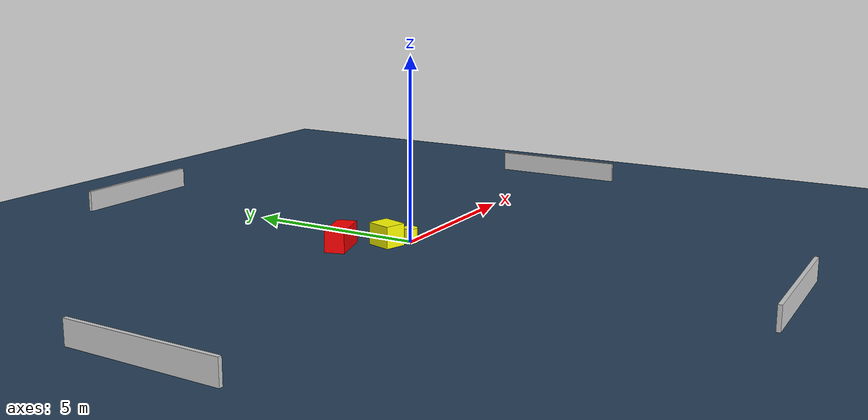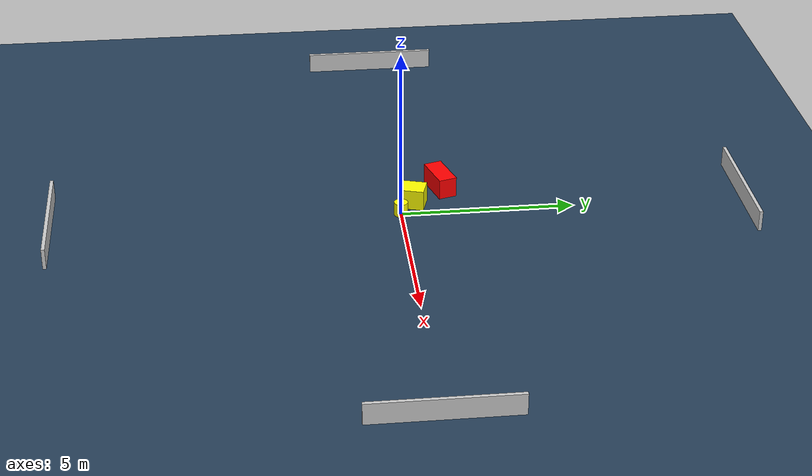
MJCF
<?xml version="1.0" ?>
<mujoco model="generated_environment">
  <option timestep="0.01" integrator="RK4" cone="elliptic"/>
  <default>
    <geom density="1"/>
  </default>
  <asset>
    <texture builtin="gradient" height="3072" name="skybox" rgb1="0.3 0.5 0.7" rgb2="0 0 0" type="skybox" width="512"/>
    <texture builtin="checker" height="300" name="groundplane" rgb1="0.2 0.3 0.4" rgb2="0.1 0.2 0.3" type="2d" width="300"/>
    <material name="groundplane" reflectance="0.2" texrepeat="5 5" texture="groundplane"/>
  </asset>
  <worldbody>
    <light dir="0 0 -1" directional="true" pos="0 0 1.5"/>
    <geom condim="3" friction="0.5 0.005 0.001" material="groundplane" name="floor" pos="0 0 0" size="0 0 0.05" type="plane"/>
    <body name="walls">
      <geom name="wall_1" condim="4" pos="-10.0 0.0 0.3" rgba="0.800000011920929 0.800000011920929 0.800000011920929 1.0" size="0.05 2.0 0.3" type="box"/>
      <geom name="wall_2" condim="4" pos="10.0 0.0 0.3" rgba="0.800000011920929 0.800000011920929 0.800000011920929 1.0" size="0.05 2.0 0.3" type="box"/>
      <geom name="wall_3" condim="4" pos="0.0 -10.0 0.3" rgba="0.800000011920929 0.800000011920929 0.800000011920929 1.0" size="2.0 0.05 0.3" type="box"/>
      <geom name="wall_4" condim="4" pos="0.0 10.0 0.3" rgba="0.800000011920929 0.800000011920929 0.800000011920929 1.0" size="2.0 0.05 0.3" type="box"/>
    </body>
    <body name="robot">
      <joint name="joint_x" type="slide" pos="0 0 0" axis="1 0 0"/>
      <joint name="joint_y" type="slide" pos="0 0 0" axis="0 1 0"/>
      <geom name="robot" type="cylinder" pos="0.0 0.0 0.2" size="0.2 0.2 0.0" mass="5.0" friction="1.0 0.005 0.0001" condim="4" rgba="1.0 1.0 0.0 1.0"/>
    </body>
    <body name="obstacle_1_movable">
      <geom name="obstacle_1_movable" condim="4" pos="-0.5397131282735447 0.40631304239483446 0.3" euler="0 0 343.35094944174557" friction="0.0 0.005 0.001" rgba="1.0 1.0 0.0 1.0" size="0.3069056267989446 0.3569153558541197 0.3" type="box" mass="0.1"/>
      <joint type="free"/>
    </body>
    <body name="obstacle_2_static">
      <geom name="obstacle_2_static" condim="4" pos="-1.392479356210951 1.3000878078983213 0.3" euler="0 0 196.56610403709624" friction="0.0 0.005 0.001" rgba="1.0 0.0 0.0 1.0" size="0.5719378243745152 0.26917472016362276 0.3" type="box"/>
    </body>
  </worldbody>
  <actuator>
    <motor name="actuator_x" joint="joint_x" gear="1" ctrlrange="-1 1"/>
    <motor name="actuator_y" joint="joint_y" gear="1" ctrlrange="-1 1"/>
  </actuator>
</mujoco>
